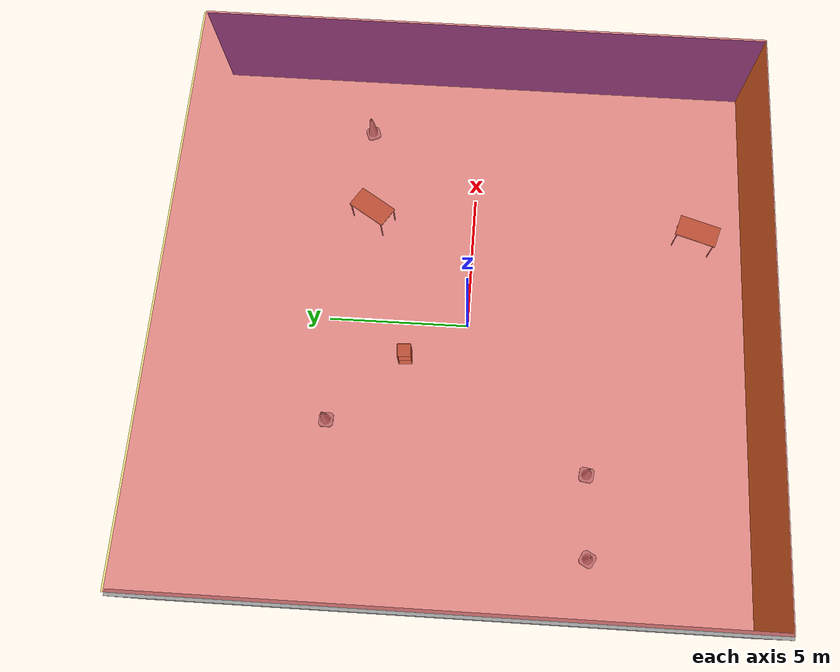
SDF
<sdf version="1.4">
 <world name="default">
  <physics type="ode">
   <max_step_size>0.001</max_step_size>
   <real_time_factor>1</real_time_factor>
   <real_time_update_rate>1000</real_time_update_rate>
   <gravity>0 0 -9.8</gravity>
  </physics>
  <scene><ambient>0.4 0.4 0.4 1</ambient><background>0.7 0.7 0.7 1</background><shadows>1</shadows></scene>
  <model name="Surrounding">
   <static>1</static>
   <link name="Ceiling">
    <collision name="Ceiling_Collision"><geometry><box><size>20 20 0.1</size></box></geometry></collision>
    <visual name="Ceiling_Visual">
     <geometry><box><size>20 20 0.1</size></box></geometry>
     <material>
      <script><uri>file://media/materials/scripts/gazebo.material</uri><name>Gazebo/RedTransparent</name></script>
     </material>
    </visual>
    <pose>0 0 4.05 0 0 0</pose>
   </link>
   <link name="Wall_South">
    <collision name="Wall_South_Collision">
     <geometry><box><size>20 0 4</size></box></geometry>
     <pose>0 0 2 0 -0 0</pose>
    </collision>
    <visual name="Wall_South_Visual">
     <pose>0 0 2 0 -0 0</pose>
     <geometry><box><size>20 0 4</size></box></geometry>
     <material>
      <script><uri>file://media/materials/scripts/gazebo.material</uri><name>Gazebo/YellowGlow</name></script>
     </material>
    </visual>
    <velocity_decay><linear>0</linear><angular>0</angular></velocity_decay>
    <pose>0 -10 0 0 -0 0</pose>
   </link>
   <link name="Wall_East">
    <collision name="Wall_21_Collision">
     <geometry><box><size>20 0 4</size></box></geometry>
     <pose>0 0 2 0 -0 0</pose>
    </collision>
    <visual name="Wall_21_Visual">
     <pose>0 0 2 0 -0 0</pose>
     <geometry><box><size>20 0 4</size></box></geometry>
     <material>
      <script><uri>file://media/materials/scripts/gazebo.material</uri><name>Gazebo/BlueGlow</name></script>
     </material>
    </visual>
    <velocity_decay><linear>0</linear><angular>0</angular></velocity_decay>
    <pose>10 0 0 0 -0 1.5708</pose>
   </link>
   <link name="Wall_North">
    <collision name="Wall_22_Collision">
     <geometry><box><size>20 0.2 4</size></box></geometry>
     <pose>0 0 2 0 -0 0</pose>
    </collision>
    <visual name="Wall_22_Visual">
     <pose>0 0 2 0 -0 0</pose>
     <geometry><box><size>20 0.2 4</size></box></geometry>
     <material>
      <script>
       <uri>file://media/materials/scripts/gazebo.material</uri>
       <name>Gazebo/YellowTransparent</name>
      </script>
     </material>
    </visual>
    <velocity_decay><linear>0</linear><angular>0</angular></velocity_decay>
    <pose>0 10 0 0 -0 0</pose>
   </link>
   <link name="Wall_West">
    <collision name="Wall_23_Collision">
     <geometry><box><size>20 0.2 4</size></box></geometry>
     <pose>0 0 2 0 -0 0</pose>
    </collision>
    <visual name="Wall_23_Visual">
     <pose>0 0 2 0 -0 0</pose>
     <geometry><box><size>20 0.2 4</size></box></geometry>
     <material>
      <script><uri>file://media/materials/scripts/gazebo.material</uri><name>Gazebo/Grey</name></script>
     </material>
    </visual>
    <velocity_decay><linear>0</linear><angular>0</angular></velocity_decay>
    <pose>-10 0 0 0 0 -1.5708</pose>
   </link>
   <link name="Ground_link">
    <collision name="collision">
     <pose>0 0 .05 0 -0 0</pose>
     <geometry><box><size>20 20 0.1</size></box></geometry>
    </collision>
    <visual name="visual">
     <pose>0 0 .05 0 -0 0</pose>
     <geometry><box><size>20 20 0.1</size></box></geometry>
     <material>
      <script><uri>file://media/materials/scripts/gazebo.material</uri><name>Gazebo/GreenTransparent</name></script>
     </material>
    </visual>
   </link>
   <static>1</static>
  </model>
  <spherical_coordinates>
   <surface_model>EARTH_WGS84</surface_model>
   <latitude_deg>0</latitude_deg>
   <longitude_deg>0</longitude_deg>
   <elevation>0</elevation>
   <heading_deg>0</heading_deg>
  </spherical_coordinates>
  <light name="lightball_0" type="diffuse">
   <diffuse>0.8 0.8 0.8 1</diffuse>
   <specular>0.2 0.2 0.2 1</specular>
   <attenuation>
    <range>100</range>
    <constant>0.7</constant>
    <linear>0.01</linear>
    <quadratic>0.001</quadratic>
   </attenuation>
   <direction>-0.5 0.1 -0.9</direction>
   <pose>4.46172755581 4.86206344607 3.64358430213 0 0 0</pose>
  </light>
  <light name="lightball_1" type="diffuse">
   <diffuse>0.8 0.8 0.8 1</diffuse>
   <specular>0.2 0.2 0.2 1</specular>
   <attenuation>
    <range>100</range>
    <constant>0.7</constant>
    <linear>0.01</linear>
    <quadratic>0.001</quadratic>
   </attenuation>
   <direction>-0.5 0.1 -0.9</direction>
   <pose>-4.64758285487 -3.65281927732 2.62160851852 0 0 0</pose>
  </light>
  <light name="lightball_2" type="diffuse">
   <diffuse>0.8 0.8 0.8 1</diffuse>
   <specular>0.2 0.2 0.2 1</specular>
   <attenuation>
    <range>100</range>
    <constant>0.7</constant>
    <linear>0.01</linear>
    <quadratic>0.001</quadratic>
   </attenuation>
   <direction>-0.5 0.1 -0.9</direction>
   <pose>-9.73287065734 0.829329164332 3.47076323511 0 0 0</pose>
  </light>
  <light name="lightball_3" type="diffuse">
   <diffuse>0.8 0.8 0.8 1</diffuse>
   <specular>0.2 0.2 0.2 1</specular>
   <attenuation>
    <range>100</range>
    <constant>0.7</constant>
    <linear>0.01</linear>
    <quadratic>0.001</quadratic>
   </attenuation>
   <direction>-0.5 0.1 -0.9</direction>
   <pose>-2.91667652936 -2.66929713431 2.81944432181 0 0 0</pose>
  </light>
  <include>
   <uri>model://construction_cone</uri>
   <pose>-7.92579556264 -4.50363484367 0 0 0 1.08056298938</pose>
  </include>
  <include>
   <uri>model://construction_cone</uri>
   <pose>-5.10934135152 -4.41238212989 0 0 0 1.42131457061</pose>
  </include>
  <include>
   <uri>model://construction_cone</uri>
   <pose>-3.72547163221 4.75933868204 0 0 0 3.13276587374</pose>
  </include>
  <include><uri>model://cabinet</uri><pose>-1.30790705097 2.15251894089 0 0 0 0.075205261198</pose></include>
  <include><uri>model://table</uri><pose>3.85866123012 -8.18492412176 0 0 0 1.27281882429</pose></include>
  <include><uri>model://table</uri><pose>4.1097922929 3.77504104972 0 0 0 1.00443261309</pose></include>
  <include>
   <uri>model://construction_cone</uri>
   <pose>7.67276391061 4.1403378773 0 0 0 0.368228319725</pose>
  </include>
 </world>
</sdf>

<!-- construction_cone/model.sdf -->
<sdf version="1.5">
  <model name="Construction Cone">
    <link name="link">
      <collision name="collision">
        <geometry>
          <mesh>
            <scale>10 10 10</scale>
            <uri>file://isr-testbed/construction_cone/meshes/construction_cone.dae</uri>
          </mesh>
        </geometry>
      </collision>
      <visual name="visual">
        <geometry>
          <mesh>
            <scale>10 10 10</scale>
            <uri>file://isr-testbed/construction_cone/meshes/construction_cone.dae</uri>
          </mesh>
        </geometry>
      </visual>
    </link>
  </model>
</sdf>

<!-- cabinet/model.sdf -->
<sdf version="1.5">
  <model name="cabinet">
    <static>true</static>
    <link name="cabinet_bottom_plate">
      <inertial>
        <pose>0 0 -1 0 0 0</pose>
        <inertia>
          <ixx>2.050000</ixx>
          <ixy>0</ixy>
          <ixz>0</ixz>
          <iyy>2.050000</iyy>
          <iyz>0</iyz>
          <izz>2.050000</izz>
        </inertia>
        <mass>25.000000</mass>
      </inertial>
      <collision name="cabinet_bottom_plate_geom">
        <pose>0 0 0.010000 0 0 0</pose>
        <geometry>
          <box>
            <size>0.450000 0.450000 0.020000</size>
          </box>
        </geometry>
      </collision>
      <visual name="cabinet_bottom_plate_geom_visual">
        <pose>0 0 0.010000 0 0 0</pose>
        <geometry>
          <box>
            <size>0.450000 0.450000 0.020000</size>
          </box>
        </geometry>
        <material>
          <script>
            <uri>model://media/materials/scripts/gazebo.material</uri>
            <name>Gazebo/Wood</name>
          </script>
        </material>
      </visual>
      <collision name="cabinet_bottom_plate_geom_cabinet_back_plate">
        <pose>0.235000 0 0.510000 0 0 0</pose>
        <geometry>
          <box>
            <size>0.020000 0.450000 1.020000</size>
          </box>
        </geometry>
      </collision>
      <visual name="cabinet_bottom_plate_geom_cabinet_back_plate_visual">
        <pose>0.235000 0 0.510000 0 0 0</pose>
        <geometry>
          <box>
            <size>0.020000 0.450000 1.020000</size>
          </box>
        </geometry>
        <material>
          <script>
            <uri>model://media/materials/scripts/gazebo.material</uri>
            <name>Gazebo/Wood</name>
          </script>
        </material>
      </visual>
      <collision name="cabinet_bottom_plate_geom_cabinet_left_plate">
        <pose>0 0.235000 0.510000 0 0 0</pose>
        <geometry>
          <box>
            <size>0.450000 0.020000 1.020000</size>
          </box>
        </geometry>
      </collision>
      <visual name="cabinet_bottom_plate_geom_cabinet_left_plate_visual">
        <pose>0 0.235000 0.510000 0 0 0</pose>
        <geometry>
          <box>
            <size>0.450000 0.020000 1.020000</size>
          </box>
        </geometry>
        <material>
          <script>
            <uri>model://media/materials/scripts/gazebo.material</uri>
            <name>Gazebo/Wood</name>
          </script>
        </material>
      </visual>
      <collision name="cabinet_bottom_plate_geom_cabinet_middle_plate">
        <pose>0 0 0.510000 0 0 0</pose>
        <geometry>
          <box>
            <size>0.450000 0.450000 0.020000</size>
          </box>
        </geometry>
      </collision>
      <visual name="cabinet_bottom_plate_geom_cabinet_middle_plate_visual">
        <pose>0 0 0.510000 0 0 0</pose>
        <geometry>
          <box>
            <size>0.450000 0.450000 0.020000</size>
          </box>
        </geometry>
        <material>
          <script>
            <uri>model://media/materials/scripts/gazebo.material</uri>
            <name>Gazebo/Wood</name>
          </script>
        </material>
      </visual>
      <collision name="cabinet_bottom_plate_geom_cabinet_right_plate">
        <pose>0 -0.235000 0.510000 0 0 0</pose>
        <geometry>
          <box>
            <size>0.450000 0.020000 1.020000</size>
          </box>
        </geometry>
      </collision>
      <visual name="cabinet_bottom_plate_geom_cabinet_right_plate_visual">
        <pose>0 -0.235000 0.510000 0 0 0</pose>
        <geometry>
          <box>
            <size>0.450000 0.020000 1.020000</size>
          </box>
        </geometry>
        <material>
          <script>
            <uri>model://media/materials/scripts/gazebo.material</uri>
            <name>Gazebo/Wood</name>
          </script>
        </material>
      </visual>
      <collision name="cabinet_bottom_plate_geom_cabinet_top_plate">
        <pose>0 0 1.010000 0 0 0</pose>
        <geometry>
          <box>
            <size>0.450000 0.450000 0.020000</size>
          </box>
        </geometry>
      </collision>
      <visual name="cabinet_bottom_plate_geom_cabinet_top_plate_visual">
        <pose>0 0 1.010000 0 0 0</pose>
        <geometry>
          <box>
            <size>0.450000 0.450000 0.020000</size>
          </box>
        </geometry>
        <material>
          <script>
            <uri>model://media/materials/scripts/gazebo.material</uri>
            <name>Gazebo/Wood</name>
          </script>
        </material>
      </visual>
    </link>
  </model>
</sdf>

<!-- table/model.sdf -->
<sdf version="1.5">
  <model name="table">
    <static>true</static>
    <link name="link">
      <collision name="surface">
        <pose>0 0 1.0 0 0 0</pose>
        <geometry>
          <box>
            <size>1.5 0.8 0.03</size>
          </box>
        </geometry>
        <surface>
          <friction>
            <ode>
              <mu>0.6</mu>
              <mu2>0.6</mu2>
            </ode>
          </friction>
        </surface>
      </collision>
      <visual name="visual1">
        <pose>0 0 1.0 0 0 0</pose>
        <geometry>
          <box>
            <size>1.5 0.8 0.03</size>
          </box>
        </geometry>
        <material>
          <script>
            <uri>model://media/materials/scripts/gazebo.material</uri>
            <name>Gazebo/Wood</name>
          </script>
        </material>
      </visual>
      <collision name="front_left_leg">
        <pose>0.68 0.38 0.5 0 0 0</pose>
        <geometry>
          <cylinder>
            <radius>0.02</radius>
            <length>1.0</length>
          </cylinder>
        </geometry>
      </collision>
      <visual name="front_left_leg">
        <pose>0.68 0.38 0.5 0 0 0</pose>
        <geometry>
          <cylinder>
            <radius>0.02</radius>
            <length>1.0</length>
          </cylinder>
        </geometry>
        <material>
          <script>
            <uri>model://media/materials/scripts/gazebo.material</uri>
            <name>Gazebo/Grey</name>
          </script>
        </material>
      </visual>
      <collision name="front_right_leg">
        <pose>0.68 -0.38 0.5 0 0 0</pose>
        <geometry>
          <cylinder>
            <radius>0.02</radius>
            <length>1.0</length>
          </cylinder>
        </geometry>
      </collision>
      <visual name="front_right_leg">
        <pose>0.68 -0.38 0.5 0 0 0</pose>
        <geometry>
          <cylinder>
            <radius>0.02</radius>
            <length>1.0</length>
          </cylinder>
        </geometry>
        <material>
          <script>
            <uri>model://media/materials/scripts/gazebo.material</uri>
            <name>Gazebo/Grey</name>
          </script>
        </material>
      </visual>
      <collision name="back_right_leg">
        <pose>-0.68 -0.38 0.5 0 0 0</pose>
        <geometry>
          <cylinder>
            <radius>0.02</radius>
            <length>1.0</length>
          </cylinder>
        </geometry>
      </collision>
      <visual name="back_right_leg">
        <pose>-0.68 -0.38 0.5 0 0 0</pose>
        <geometry>
          <cylinder>
            <radius>0.02</radius>
            <length>1.0</length>
          </cylinder>
        </geometry>
        <material>
          <script>
            <uri>model://media/materials/scripts/gazebo.material</uri>
            <name>Gazebo/Grey</name>
          </script>
        </material>
      </visual>
      <collision name="back_left_leg">
        <pose>-0.68 0.38 0.5 0 0 0</pose>
        <geometry>
          <cylinder>
            <radius>0.02</radius>
            <length>1.0</length>
          </cylinder>
        </geometry>
      </collision>
      <visual name="back_left_leg">
        <pose>-0.68 0.38 0.5 0 0 0</pose>
        <geometry>
          <cylinder>
            <radius>0.02</radius>
            <length>1.0</length>
          </cylinder>
        </geometry>
        <material>
          <script>
            <uri>model://media/materials/scripts/gazebo.material</uri>
            <name>Gazebo/Grey</name>
          </script>
        </material>
      </visual>
    </link>
  </model>
</sdf>
